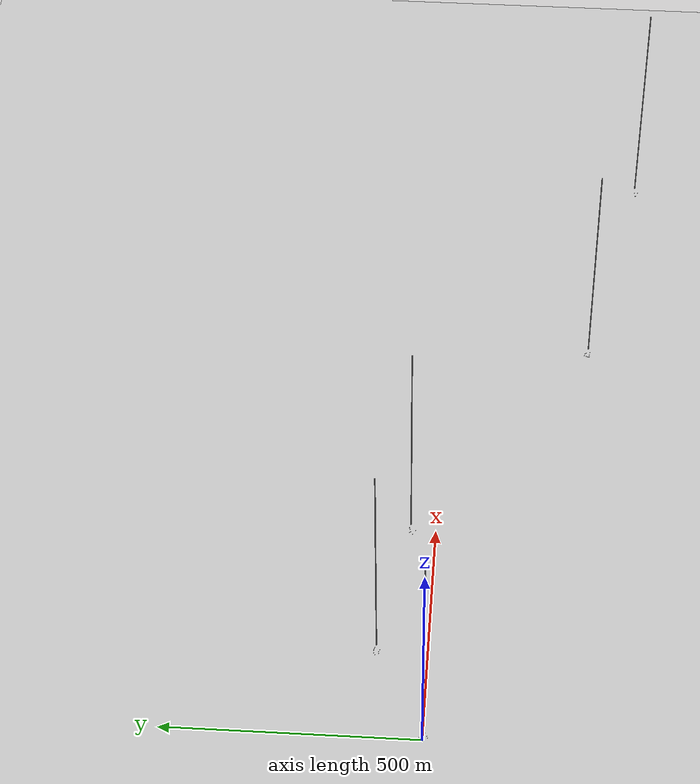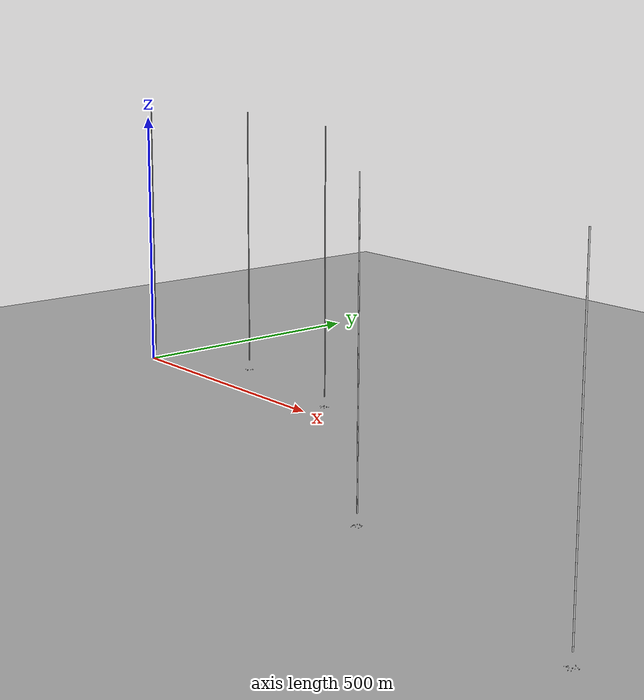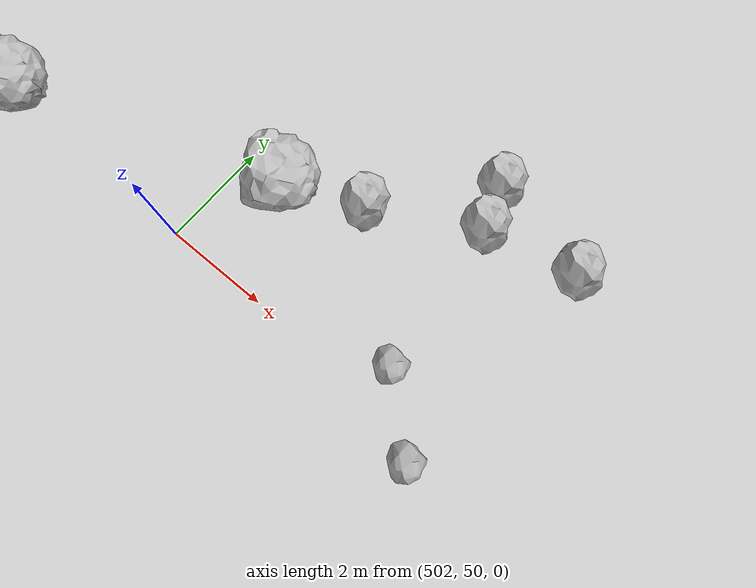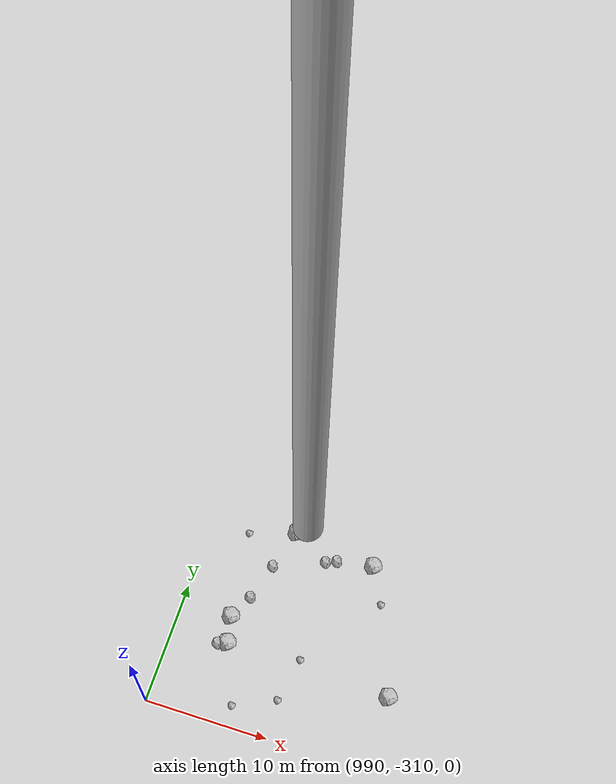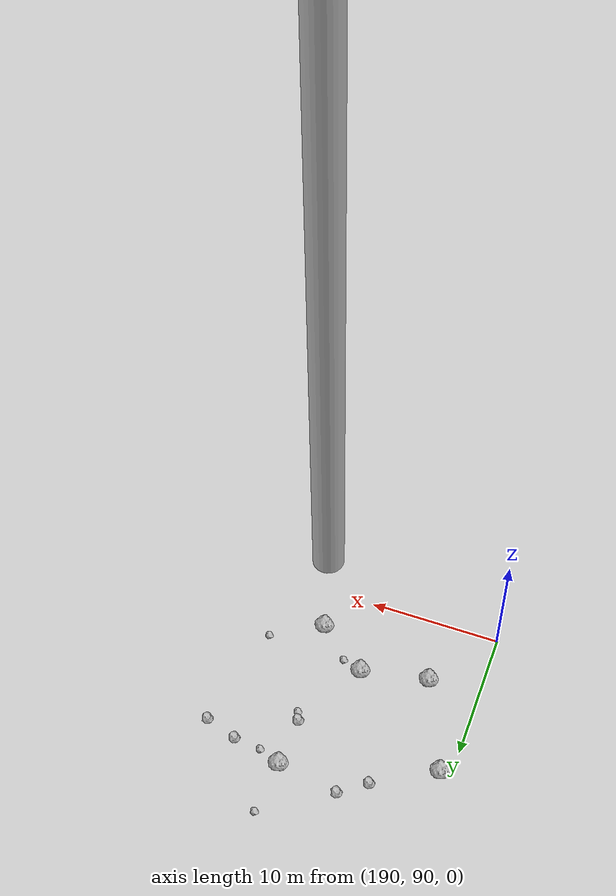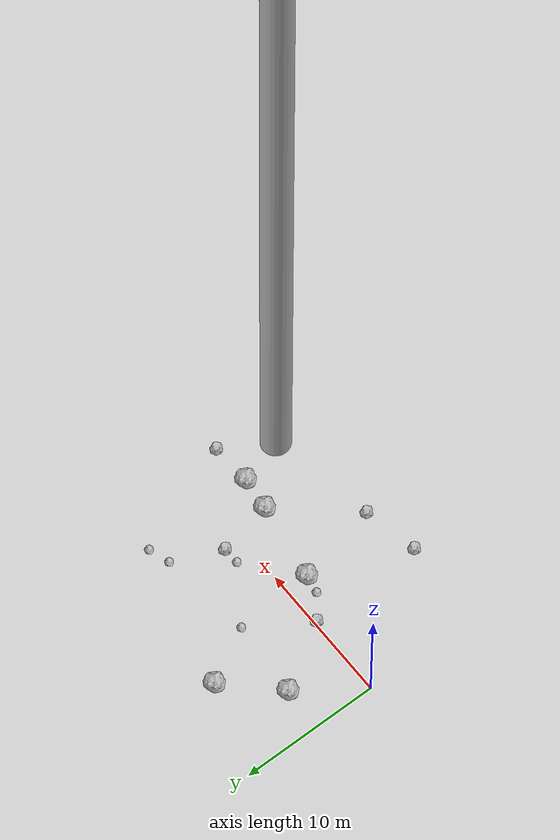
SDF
<?xml version="1.0" ?>
<sdf version="1.6">
  <world name="default">

    <include>
      <uri>model://custom_ground</uri>
    </include>

    <include>
      <uri>model://sun</uri>
    </include>

    <spherical_coordinates>
      <surface_model>EARTH_WGS84</surface_model>
      <latitude_deg>38.161479</latitude_deg>
      <longitude_deg>-122.454630</longitude_deg>
      <elevation>488.0</elevation>
      <heading_deg>90</heading_deg>
    </spherical_coordinates>

    <model name="rock1_0_0">
      <include>
        <uri>model://rock1</uri>
        <pose>8.780488423935424 -1.5923682175780467 0.5 0 0 0</pose>
      </include>
    </model>
    <model name="rock1_0_1">
      <include>
        <uri>model://rock1</uri>
        <pose>16.68563052987503 -2.720438745554061 0.5 0 0 0</pose>
      </include>
    </model>
    <model name="rock1_0_2">
      <include>
        <uri>model://rock1</uri>
        <pose>14.302793159616012 -2.4433525734277017 0.5 0 0 0</pose>
      </include>
    </model>
    <model name="rock1_0_3">
      <include>
        <uri>model://rock1</uri>
        <pose>3.072727331612015 4.4273943382737695 0.5 0 0 0</pose>
      </include>
    </model>
    <model name="rock1_0_4">
      <include>
        <uri>model://rock1</uri>
        <pose>6.408716478651176 7.842143900445805 0.5 0 0 0</pose>
      </include>
    </model>
    <model name="rock2_0_0">
      <include>
        <uri>model://rock2</uri>
        <pose>13.53396607355071 1.4164081044801584 0.3 0 0 0</pose>
      </include>
    </model>
    <model name="rock2_0_1">
      <include>
        <uri>model://rock2</uri>
        <pose>5.825041114014309 -0.10983599305814273 0.3 0 0 0</pose>
      </include>
    </model>
    <model name="rock2_0_2">
      <include>
        <uri>model://rock2</uri>
        <pose>9.944570675598012 -7.506495751999793 0.3 0 0 0</pose>
      </include>
    </model>
    <model name="rock2_0_3">
      <include>
        <uri>model://rock2</uri>
        <pose>19.636052987003282 -2.603641095676017 0.3 0 0 0</pose>
      </include>
    </model>
    <model name="rock2_0_4">
      <include>
        <uri>model://rock2</uri>
        <pose>5.983091886450245 -8.330888313019182 0.3 0 0 0</pose>
      </include>
    </model>
    <model name="rock3_0_0">
      <include>
        <uri>model://rock3</uri>
        <pose>15.045807103022232 4.7979739226138065 0.2 0 0 0</pose>
      </include>
    </model>
    <model name="rock3_0_1">
      <include>
        <uri>model://rock3</uri>
        <pose>8.458935533918906 3.9702767360397857 0.2 0 0 0</pose>
      </include>
    </model>
    <model name="rock3_0_2">
      <include>
        <uri>model://rock3</uri>
        <pose>16.5535280006903 5.289466275372156 0.2 0 0 0</pose>
      </include>
    </model>
    <model name="rock3_0_3">
      <include>
        <uri>model://rock3</uri>
        <pose>12.320780560776035 1.3292966028271476 0.2 0 0 0</pose>
      </include>
    </model>
    <model name="rock3_0_4">
      <include>
        <uri>model://rock3</uri>
        <pose>7.436789275270506 -1.4272491972793517 0.2 0 0 0</pose>
      </include>
    </model>
    <model name="rock1_1_0">
      <include>
        <uri>model://rock1</uri>
        <pose>193.9297698765465 95.0939515893788 0.5 0 0 0</pose>
      </include>
    </model>
    <model name="rock1_1_1">
      <include>
        <uri>model://rock1</uri>
        <pose>202.93790427571463 93.26818826193019 0.5 0 0 0</pose>
      </include>
    </model>
    <model name="rock1_1_2">
      <include>
        <uri>model://rock1</uri>
        <pose>190.87554289182503 102.02119120273142 0.5 0 0 0</pose>
      </include>
    </model>
    <model name="rock1_1_3">
      <include>
        <uri>model://rock1</uri>
        <pose>202.06469036986502 105.3875373083195 0.5 0 0 0</pose>
      </include>
    </model>
    <model name="rock1_1_4">
      <include>
        <uri>model://rock1</uri>
        <pose>199.0212680000172 96.08841904495567 0.5 0 0 0</pose>
      </include>
    </model>
    <model name="rock2_1_0">
      <include>
        <uri>model://rock2</uri>
        <pose>205.84054366090123 104.4982558780592 0.3 0 0 0</pose>
      </include>
    </model>
    <model name="rock2_1_1">
      <include>
        <uri>model://rock2</uri>
        <pose>197.32851365017441 106.08197220381535 0.3 0 0 0</pose>
      </include>
    </model>
    <model name="rock2_1_2">
      <include>
        <uri>model://rock2</uri>
        <pose>195.3695949931336 104.6076803272193 0.3 0 0 0</pose>
      </include>
    </model>
    <model name="rock2_1_3">
      <include>
        <uri>model://rock2</uri>
        <pose>208.30535414867325 103.69449352908947 0.3 0 0 0</pose>
      </include>
    </model>
    <model name="rock2_1_4">
      <include>
        <uri>model://rock2</uri>
        <pose>201.95199019652014 101.56948720183678 0.3 0 0 0</pose>
      </include>
    </model>
    <model name="rock3_1_0">
      <include>
        <uri>model://rock3</uri>
        <pose>202.21327745142983 100.84304740015709 0.2 0 0 0</pose>
      </include>
    </model>
    <model name="rock3_1_1">
      <include>
        <uri>model://rock3</uri>
        <pose>200.50881673737248 95.52352051331997 0.2 0 0 0</pose>
      </include>
    </model>
    <model name="rock3_1_2">
      <include>
        <uri>model://rock3</uri>
        <pose>203.7110808448381 104.6659913331727 0.2 0 0 0</pose>
      </include>
    </model>
    <model name="rock3_1_3">
      <include>
        <uri>model://rock3</uri>
        <pose>206.61636924729655 95.38165791814296 0.2 0 0 0</pose>
      </include>
    </model>
    <model name="rock3_1_4">
      <include>
        <uri>model://rock3</uri>
        <pose>202.29167743233063 109.36139222991869 0.2 0 0 0</pose>
      </include>
    </model>
    <model name="rock1_2_0">
      <include>
        <uri>model://rock1</uri>
        <pose>491.4127915901788 46.23656714641909 0.5 0 0 0</pose>
      </include>
    </model>
    <model name="rock1_2_1">
      <include>
        <uri>model://rock1</uri>
        <pose>497.5734544782072 50.1658798643793 0.5 0 0 0</pose>
      </include>
    </model>
    <model name="rock1_2_2">
      <include>
        <uri>model://rock1</uri>
        <pose>500.2735062230032 40.352498341283294 0.5 0 0 0</pose>
      </include>
    </model>
    <model name="rock1_2_3">
      <include>
        <uri>model://rock1</uri>
        <pose>502.89567855950037 51.85582076269439 0.5 0 0 0</pose>
      </include>
    </model>
    <model name="rock1_2_4">
      <include>
        <uri>model://rock1</uri>
        <pose>494.5332019381379 53.05841786039402 0.5 0 0 0</pose>
      </include>
    </model>
    <model name="rock2_2_0">
      <include>
        <uri>model://rock2</uri>
        <pose>505.95481055005473 54.375778236844326 0.3 0 0 0</pose>
      </include>
    </model>
    <model name="rock2_2_1">
      <include>
        <uri>model://rock2</uri>
        <pose>506.4010591659397 43.4062545988473 0.3 0 0 0</pose>
      </include>
    </model>
    <model name="rock2_2_2">
      <include>
        <uri>model://rock2</uri>
        <pose>506.20416825292466 53.531968335338064 0.3 0 0 0</pose>
      </include>
    </model>
    <model name="rock2_2_3">
      <include>
        <uri>model://rock2</uri>
        <pose>507.92223727028687 53.844808789119284 0.3 0 0 0</pose>
      </include>
    </model>
    <model name="rock2_2_4">
      <include>
        <uri>model://rock2</uri>
        <pose>504.2883079367799 52.521698000678434 0.3 0 0 0</pose>
      </include>
    </model>
    <model name="rock3_2_0">
      <include>
        <uri>model://rock3</uri>
        <pose>495.5392741537228 47.08565625686886 0.2 0 0 0</pose>
      </include>
    </model>
    <model name="rock3_2_1">
      <include>
        <uri>model://rock3</uri>
        <pose>506.41989352015304 50.55658283956491 0.2 0 0 0</pose>
      </include>
    </model>
    <model name="rock3_2_2">
      <include>
        <uri>model://rock3</uri>
        <pose>507.5412917950315 49.54666234786845 0.2 0 0 0</pose>
      </include>
    </model>
    <model name="rock3_2_3">
      <include>
        <uri>model://rock3</uri>
        <pose>495.7512003361429 45.66686078590101 0.2 0 0 0</pose>
      </include>
    </model>
    <model name="rock3_2_4">
      <include>
        <uri>model://rock3</uri>
        <pose>494.2173375076079 52.45323393437058 0.2 0 0 0</pose>
      </include>
    </model>
    <model name="rock1_3_0">
      <include>
        <uri>model://rock1</uri>
        <pose>997.0410783797768 -292.99006163484444 0.5 0 0 0</pose>
      </include>
    </model>
    <model name="rock1_3_1">
      <include>
        <uri>model://rock1</uri>
        <pose>1003.9183971812201 -293.8935164628176 0.5 0 0 0</pose>
      </include>
    </model>
    <model name="rock1_3_2">
      <include>
        <uri>model://rock1</uri>
        <pose>994.1902755743897 -301.46886072680337 0.5 0 0 0</pose>
      </include>
    </model>
    <model name="rock1_3_3">
      <include>
        <uri>model://rock1</uri>
        <pose>994.6447215894252 -303.6488656715695 0.5 0 0 0</pose>
      </include>
    </model>
    <model name="rock1_3_4">
      <include>
        <uri>model://rock1</uri>
        <pose>1008.0955620700328 -304.03614189042827 0.5 0 0 0</pose>
      </include>
    </model>
    <model name="rock2_3_0">
      <include>
        <uri>model://rock2</uri>
        <pose>995.1279584045878 -299.41678695051104 0.3 0 0 0</pose>
      </include>
    </model>
    <model name="rock2_3_1">
      <include>
        <uri>model://rock2</uri>
        <pose>1000.0500502707312 -294.6723647464743 0.3 0 0 0</pose>
      </include>
    </model>
    <model name="rock2_3_2">
      <include>
        <uri>model://rock2</uri>
        <pose>1000.9127552872837 -294.3192647178931 0.3 0 0 0</pose>
      </include>
    </model>
    <model name="rock2_3_3">
      <include>
        <uri>model://rock2</uri>
        <pose>996.0287203365112 -296.31581361404096 0.3 0 0 0</pose>
      </include>
    </model>
    <model name="rock2_3_4">
      <include>
        <uri>model://rock2</uri>
        <pose>993.860595494358 -303.8793213615811 0.3 0 0 0</pose>
      </include>
    </model>
    <model name="rock3_3_0">
      <include>
        <uri>model://rock3</uri>
        <pose>996.5554394800587 -308.3645412975516 0.2 0 0 0</pose>
      </include>
    </model>
    <model name="rock3_3_1">
      <include>
        <uri>model://rock3</uri>
        <pose>1000.564954315794 -303.20754875777493 0.2 0 0 0</pose>
      </include>
    </model>
    <model name="rock3_3_2">
      <include>
        <uri>model://rock3</uri>
        <pose>993.2541220901875 -294.13282977449273 0.2 0 0 0</pose>
      </include>
    </model>
    <model name="rock3_3_3">
      <include>
        <uri>model://rock3</uri>
        <pose>999.846850826051 -306.8639805882817 0.2 0 0 0</pose>
      </include>
    </model>
    <model name="rock3_3_4">
      <include>
        <uri>model://rock3</uri>
        <pose>1005.3978737471165 -296.8274870217082 0.2 0 0 0</pose>
      </include>
    </model>
    <model name="rock1_4_0">
      <include>
        <uri>model://rock1</uri>
        <pose>1494.9651813622204 -402.606530454839 0.5 0 0 0</pose>
      </include>
    </model>
    <model name="rock1_4_1">
      <include>
        <uri>model://rock1</uri>
        <pose>1495.122742130162 -402.0229150637741 0.5 0 0 0</pose>
      </include>
    </model>
    <model name="rock1_4_2">
      <include>
        <uri>model://rock1</uri>
        <pose>1494.4007137332483 -403.9308597816663 0.5 0 0 0</pose>
      </include>
    </model>
    <model name="rock1_4_3">
      <include>
        <uri>model://rock1</uri>
        <pose>1501.6648597138383 -401.29408403262914 0.5 0 0 0</pose>
      </include>
    </model>
    <model name="rock1_4_4">
      <include>
        <uri>model://rock1</uri>
        <pose>1508.452637506432 -397.3347135982886 0.5 0 0 0</pose>
      </include>
    </model>
    <model name="rock2_4_0">
      <include>
        <uri>model://rock2</uri>
        <pose>1504.972998945932 -395.7476539419856 0.3 0 0 0</pose>
      </include>
    </model>
    <model name="rock2_4_1">
      <include>
        <uri>model://rock2</uri>
        <pose>1498.090738726274 -403.7658194974839 0.3 0 0 0</pose>
      </include>
    </model>
    <model name="rock2_4_2">
      <include>
        <uri>model://rock2</uri>
        <pose>1499.0112065991627 -392.99587678712123 0.3 0 0 0</pose>
      </include>
    </model>
    <model name="rock2_4_3">
      <include>
        <uri>model://rock2</uri>
        <pose>1501.8882481326234 -409.42531578662266 0.3 0 0 0</pose>
      </include>
    </model>
    <model name="rock2_4_4">
      <include>
        <uri>model://rock2</uri>
        <pose>1505.3984849570256 -408.0397791444305 0.3 0 0 0</pose>
      </include>
    </model>
    <model name="rock3_4_0">
      <include>
        <uri>model://rock3</uri>
        <pose>1504.6585242825167 -400.81345149059695 0.2 0 0 0</pose>
      </include>
    </model>
    <model name="rock3_4_1">
      <include>
        <uri>model://rock3</uri>
        <pose>1491.5289355304428 -405.13585297501123 0.2 0 0 0</pose>
      </include>
    </model>
    <model name="rock3_4_2">
      <include>
        <uri>model://rock3</uri>
        <pose>1500.637419410871 -394.25838519151347 0.2 0 0 0</pose>
      </include>
    </model>
    <model name="rock3_4_3">
      <include>
        <uri>model://rock3</uri>
        <pose>1498.6324927814485 -397.4378326523567 0.2 0 0 0</pose>
      </include>
    </model>
    <model name="rock3_4_4">
      <include>
        <uri>model://rock3</uri>
        <pose>1490.3412909774663 -400.23173766837857 0.2 0 0 0</pose>
      </include>
    </model>

    <model name="cylinder_1">
      <static>true</static>
      <link name="link">
        <visual name="visual">
          <geometry>
            <cylinder>
              <radius>1</radius>
              <length>500</length>
            </cylinder>
          </geometry>
        </visual>
      </link>
      <pose>10 0 270 0 0 0</pose>
    </model>

    <model name="cylinder_2">
      <static>true</static>
      <link name="link">
        <visual name="visual">
          <geometry>
            <cylinder>
              <radius>1</radius>
              <length>500</length>
            </cylinder>
          </geometry>
        </visual>
      </link>
      <pose>200 100 270 0 0 0</pose>
    </model>

    <model name="cylinder_3">
      <static>true</static>
      <link name="link">
        <visual name="visual">
          <geometry>
            <cylinder>
              <radius>1</radius>
              <length>500</length>
            </cylinder>
          </geometry>
        </visual>
      </link>
      <pose>500 50 270 0 0 0</pose>
    </model>

    <model name="cylinder_4">
      <static>true</static>
      <link name="link">
        <visual name="visual">
          <geometry>
            <cylinder>
              <radius>1</radius>
              <length>500</length>
            </cylinder>
          </geometry>
        </visual>
      </link>
      <pose>1000 -300 270 0 0 0</pose>
    </model>

    <model name="cylinder_5">
      <static>true</static>
      <link name="link">
        <visual name="visual">
          <geometry>
            <cylinder>
              <radius>1</radius>
              <length>500</length>
            </cylinder>
          </geometry>
        </visual>
      </link>
      <pose>1500 -400 270 0 0 0</pose>
    </model>

  </world>
</sdf>

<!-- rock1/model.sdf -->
<sdf version="1.6">
  <model name="rock1">
    <static>true</static> <!-- Set to true if the model should not move -->
    <pose>0 0 0 0 0 0</pose>

    <!--z offset is 0.5 for full scale-->

    <link name="link">
      <collision name="rock1_collision">
        <geometry>
          <mesh>
            <uri>model://meshes/rock1.dae</uri>
          </mesh>
        </geometry>
      </collision>
      <visual name="rock1_visual">
        <geometry>
          <mesh>
            <uri>model://meshes/rock1.dae</uri>
          </mesh>
        </geometry>
        <material>
          <script>
            <uri>model://materials/scripts/sand_pebbles.material</uri>
            <name>custom_ground/Image</name>
          </script>
        </material>
      </visual>
    </link>
  </model>
</sdf>

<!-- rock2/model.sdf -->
<sdf version="1.6">
  <model name="rock2">
    <static>true</static> <!-- Set to true if the model should not move -->
    <pose>0 0 0 0 0 0</pose>

    <!--z offset is 0.3 for full scale-->

    <link name="link">
      <collision name="rock2_collision">
        <geometry>
          <mesh>
            <uri>model://meshes/rock2.dae</uri>
          </mesh>
        </geometry>
      </collision>
      <visual name="rock2_visual">
        <geometry>
          <mesh>
            <uri>model://meshes/rock2.dae</uri>
          </mesh>
        </geometry>
        <material>
          <script>
            <uri>model://materials/scripts/sand_pebbles.material</uri>
            <name>custom_ground/Image</name>
          </script>
        </material>
      </visual>
    </link>
  </model>
</sdf>

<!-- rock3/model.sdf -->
<sdf version="1.6">
  <model name="rock3">
    <static>true</static> <!-- Set to true if the model should not move -->
    <pose>0 0 0 0 0 0</pose>

    <!--z offset is 0.2 for full scale-->

    <link name="link">
      <collision name="rock3_collision">
        <geometry>
          <mesh>
            <uri>model://meshes/rock3.dae</uri>
          </mesh>
        </geometry>
      </collision>
      <visual name="rock3_visual">
        <geometry>
          <mesh>
            <uri>model://meshes/rock3.dae</uri>
          </mesh>
        </geometry>
        <material>
          <script>
            <uri>model://materials/scripts/sand_pebbles.material</uri>
            <name>custom_ground/Image</name>
          </script>
        </material>
      </visual>
    </link>
  </model>
</sdf>

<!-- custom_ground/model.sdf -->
<sdf version="1.6">
  <model name="custom_ground">
    <static>true</static> <!-- Ground is static and immovable -->
    <link name="ground_link">
      <pose>240 0 0 0 0 0</pose> <!-- Position and orientation relative to the world -->
      <!-- Visual Representation -->
      <visual name="ground_visual">
        <geometry>
          <plane>
            <normal>0 0 1</normal> <!-- Upward facing plane -->
            <size>500 500</size> <!-- Size of the plane -->
          </plane>
        </geometry>
        <material>
          <script>
            <uri>model://materials/scripts/sand_pebbles.material</uri>
            <name>custom_ground/Image</name>
          </script>
        </material>
      </visual>

      <!-- Collision Representation -->
      <collision name="ground_collision">
        <geometry>
          <plane>
            <normal>0 0 1</normal>
            <size>100 100</size>
          </plane>
        </geometry>
      </collision>

    </link>
  </model>
</sdf>
